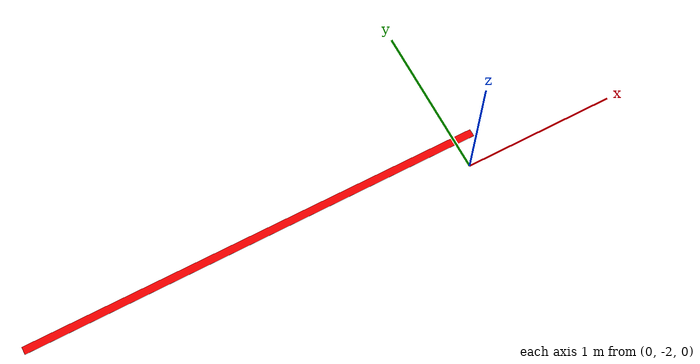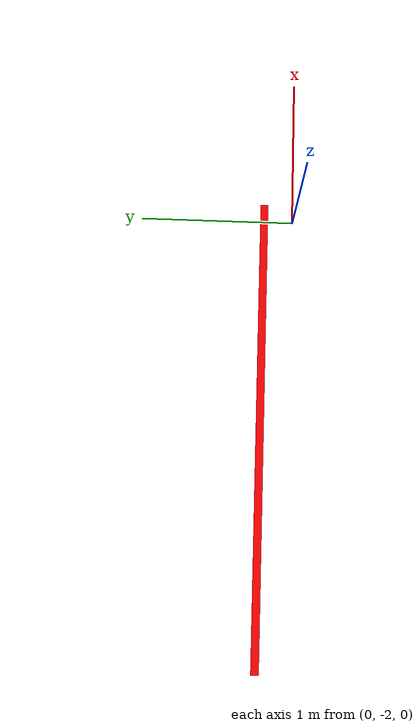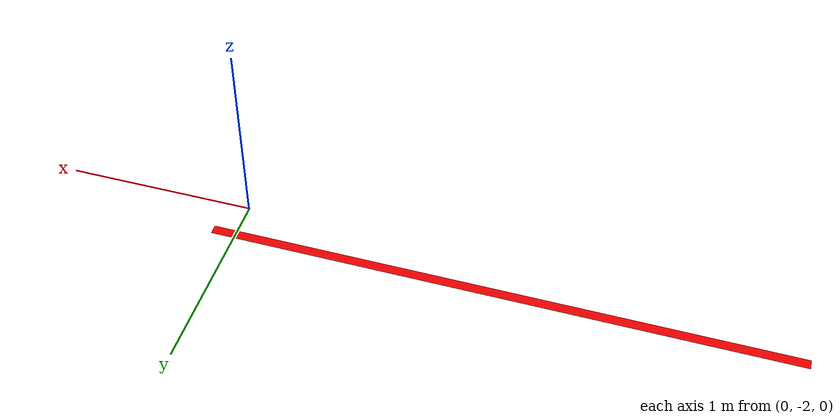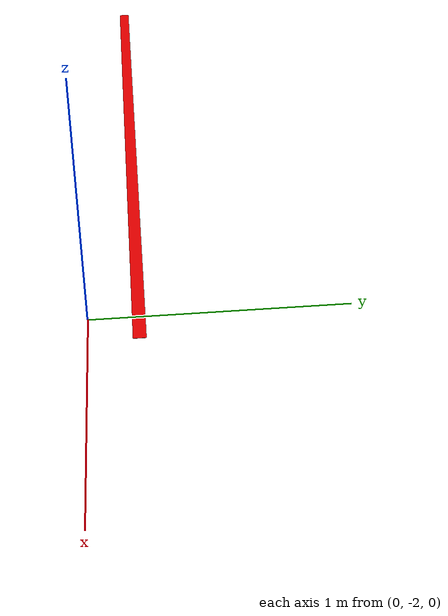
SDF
<?xml version='1.0'?>
<sdf version='1.7'>
  <model name='red_path'>
    <pose>-1.375 -0.9175 0 0 -0 0</pose>
    <link name='Wall_0'>
      <collision name='Wall_0_Collision'>
        <geometry>
          <box>
            <size>3.0 0.05 0.001</size>
          </box>
        </geometry>
        <pose>0 0 0.0005 0 -0 0</pose>
      </collision>
      <visual name='Wall_0_Visual'>
        <pose>0 0 0.0005 0 -0 0</pose>
        <geometry>
          <box>
            <size>3.0 0.05 0.001</size>
          </box>
        </geometry>
        <material>
          <script>
            <uri>file://media/materials/scripts/gazebo.material</uri>
            <name>Gazebo/Grey</name>
          </script>
          <ambient>1.0 0.0 0.0 1</ambient>
        </material>
        <meta>
          <layer>0</layer>
        </meta>
      </visual>
      <pose>0 -0.8925 0 0 -0 0</pose>
    </link>
    <static>1</static>
  </model>
</sdf>
